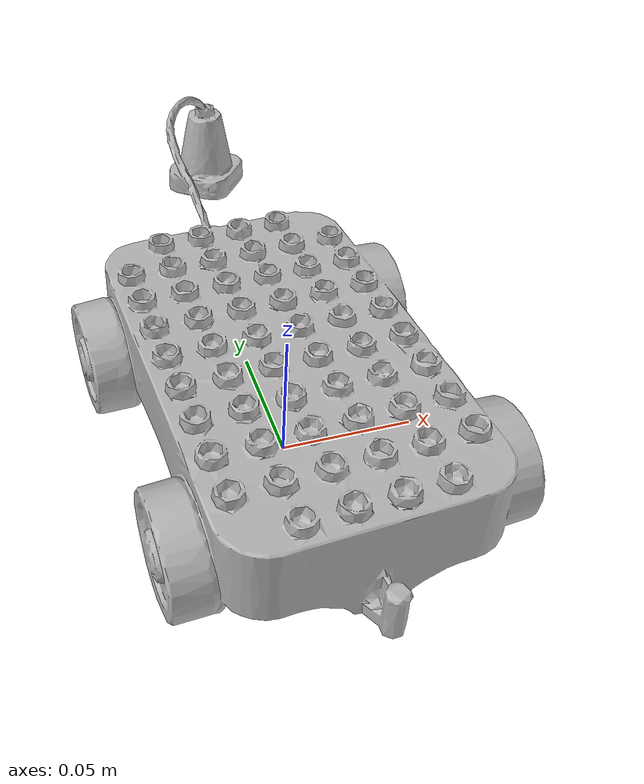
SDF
<?xml version="1.0" ?>
<sdf version='1.8'>
  <model name='ycb_073-g_lego_duplo'>
    <link name='body'>
      <inertial>
        <mass>0.33426717846</mass>
        <pose>0.00156720041 0.00819761365 0.0318707607 0 0 0</pose>
        <inertia>
          <ixx>0.00141979623029</ixx>
          <ixy>-3.85394793567e-05</ixy>
          <ixz>3.76741239489e-06</ixz>
          <iyy>0.000526359790741</iyy>
          <iyz>4.05316796141e-05</iyz>
          <izz>0.00183678456251</izz>
        </inertia>
      </inertial>
      <visual name='ycb_073-g_lego_duplo_visual'>
        <pose>0.015968 0.091642 0.000687 0 0 0</pose>
        <geometry>
          <mesh>
            <uri>model://ycb_073-g_lego_duplo/meshes/textured.dae</uri>
          </mesh>
        </geometry>
      </visual>
      <collision name='ycb_073-g_lego_duplo_collision'>
        <pose>0.015968 0.091642 0.000687 0 0 0</pose>
        <geometry>
          <mesh>
            <uri>model://ycb_073-g_lego_duplo/meshes/nontextured.stl</uri>
          </mesh>
        </geometry>
        <max_contacts>10</max_contacts>
        <surface>
          <contact>
            <ode>
              <kp>1e15</kp>
              <kd>1e13</kd>
            </ode>
          </contact>
        </surface>
      </collision>
    </link>
  </model>
</sdf>
